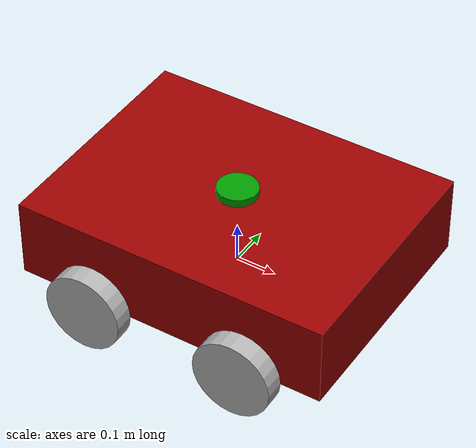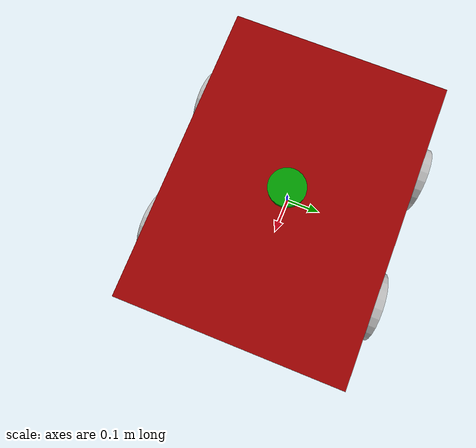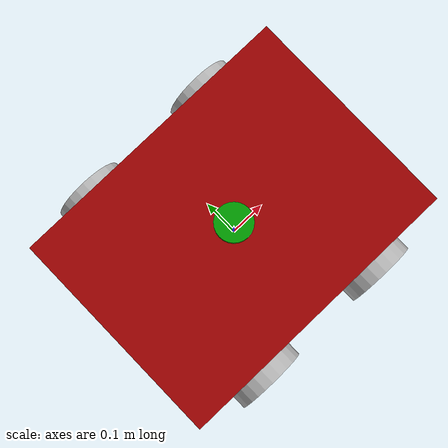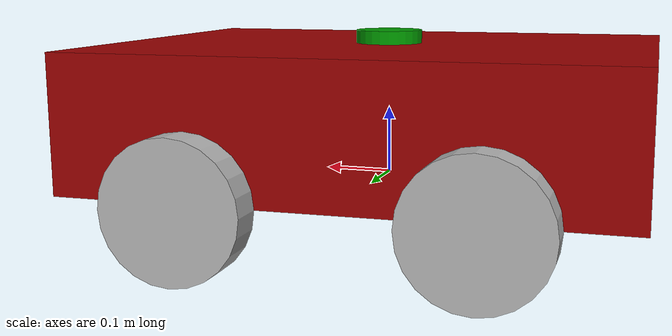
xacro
<?xml version = "1.0" ?>
<robot name = "rover" xmlns:xacro = "http://www.ros.org/wiki/xacro">
    <!-- Colours -->
    <material name = "green">
        <color rgba = "0 0.6 0 1" />
    </material>
    <material name = "red">
        <color rgba = "0.6 0 0 1" />
    </material>
    <material name = "gray">
        <color rgba = "0.7 0.7 0.7 1" />
    </material>

    <!-- XACROS !!! -->
    <!-- Inertia Xacros -->
    <xacro:macro name = "box_inertia" params = "m x y z o_xyz o_rpy">
        <inertial>
            <mass value = "${m}"/>
            <origin xyz = "${o_xyz}" rpy = "${o_rpy}" />
            <inertia
                ixx = "${(m / 12) * (z * z + y * y)}"
                iyy = "${(m / 12) * (x * x + z * z)}"
                izz = "${(m / 12) * (x * x + y * y)}"
                ixy = "0" iyz = "0" ixz = "0">
            </inertia>
        </inertial>
    </xacro:macro>
    <xacro:macro name = "cylinder_inertia" params = "m r l o_xyz o_rpy">
        <inertial>
            <mass value = "${m}"/>
            <origin xyz = "${o_xyz}" rpy = "${o_rpy}" />
            <inertia
                ixx = "${(m / 12) * (3 * r * r + l * l)}"
                iyy = "${(m / 12) * (3 * r * r + l * l)}"
                izz = "${(m / 2) * (r * r)}"
                ixy = "0" iyz = "0" ixz = "0">
            </inertia>
        </inertial>
    </xacro:macro>
    <!-- Wheel link Xacros -->
    <xacro:macro name = "wheel_link" params = "prefix">
        <link name = "${prefix}_wheel_link">
            <visual>
                <geometry>
                    <cylinder radius = "${wheel_radius}" length = "${wheel_length}" />
                </geometry>
                <origin xyz = "0 0 0" rpy = "${pi / 2.0} 0 0" />
                <material name = "gray" />
            </visual>
            <collision>
                <geometry>
                    <sphere radius = "${wheel_radius}" />
                </geometry>
                <origin xyz = "0 0 0" rpy = "0 0 0" />
            </collision>
            <xacro:cylinder_inertia m = "${wheel_mass}" r = "${wheel_radius}" l = "${wheel_length}" o_xyz = "0 0 0" o_rpy = "${pi / 2.0} 0 0" />
        </link>
    </xacro:macro>
    <!-- Wheel joint Xacros -->
    <xacro:macro name = "wheel_joint" params = "prefix x y">
        <joint name = "base_${prefix}_wheel_joint" type = "continuous">
            <parent link = "base_link" />
            <child link = "${prefix}_wheel_link" />
            <origin xyz = "${x} ${y} 0" rpy = "0 0 0" />
            <axis xyz = "0 1 0" />
        </joint>
    </xacro:macro>

    <!-- Properties -->
    <xacro:property name = "base_length" value = "0.8" />
    <xacro:property name = "base_width" value = "0.6" />
    <xacro:property name = "base_height" value = "0.2" />
    <xacro:property name = "wheel_radius" value = "0.1" />
    <xacro:property name = "wheel_length" value = "0.05" />
    <xacro:property name = "wheel_mass" value = "1.0"/>
    <xacro:property name = "box_mass" value = "5.0"/>

    <!-- TF Tree starts here -->
    <link name = "base_link">
        <visual>
            <geometry>
                <box size = "${base_length} ${base_width} ${base_height}" />
            </geometry>
            <origin xyz = "0 0 ${base_height / 2.0}" rpy = "0 0 0" />
            <material name = "red" />
        </visual>
        <collision>
            <geometry>
                <box size = "${base_length} ${base_width} ${base_height}" />
            </geometry>
            <origin xyz = "0 0 ${base_height / 2.0}" rpy = "0 0 0" />
        </collision>
        <xacro:box_inertia m = "${box_mass}" x = "${base_length}" y = "${base_width}" z = "${base_height}" o_xyz = "0 0 ${base_height / 2.0}" o_rpy = "0 0 0" />
    </link>
    <xacro:wheel_link prefix = "front_right" />
    <xacro:wheel_link prefix = "front_left" />
    <xacro:wheel_link prefix = "back_right" />
    <xacro:wheel_link prefix = "back_left" />
    <xacro:wheel_joint prefix = "front_right" x = "${base_length / 4.0}" y = "${-(base_width + wheel_length) / 2.0}" />
    <xacro:wheel_joint prefix = "front_left" x = "${base_length / 4.0}" y = "${(base_width + wheel_length) / 2.0}" />
    <xacro:wheel_joint prefix = "back_right" x = "${-base_length / 4.0}" y = "${-(base_width + wheel_length) / 2.0}" />
    <xacro:wheel_joint prefix = "back_left" x = "${-base_length / 4.0}" y = "${(base_width + wheel_length) / 2.0}" />
    <link name = "lidar_link">
        <visual>
            <geometry>
                <cylinder radius = "0.05" length = "0.02" />
            </geometry>
            <origin xyz = "0 0 0" rpy = "0 0 0" />
            <material name = "green" />
        </visual>
        <collision>
            <geometry>
                <box size = "0.1 0.1 0.02" />
            </geometry>
            <origin xyz = "0 0 0" rpy = "0 0 0" />
        </collision>
        <xacro:box_inertia m = "0.2" x = "0.1" y = "0.1" z = "0.02" o_xyz = "0 0 0" o_rpy = "0 0 0" />
    </link>
    <joint name = "lidar_joint" type = "fixed">
        <parent link = "base_link" />
        <child link = "lidar_link" />
        <origin xyz = "0 0 ${base_height + 0.01}" />
    </joint>

    <gazebo>
        <plugin filename = "gz-sim-diff-drive-system" name = "gz::sim::systems::DiffDrive">
            <left_joint>base_front_left_wheel_joint</left_joint>
            <left_joint>base_back_left_wheel_joint</left_joint>
            <right_joint>base_front_right_wheel_joint</right_joint>
            <right_joint>base_back_right_wheel_joint</right_joint>
            <wheel_seperation>${base_width}</wheel_seperation>
            <wheel_radius>${wheel_radius}</wheel_radius>
            <topic>cmd_vel</topic>
            <odom_publish_frequency>50</odom_publish_frequency>
            <odom_topic>odom</odom_topic>
            <frame_id>odom</frame_id>
            <child_frame_id>base_link</child_frame_id>
        </plugin>
    </gazebo>

    <gazebo reference = "lidar_link">
        <sensor name = "lidar" type = "gpu_lidar">
            <pose>0 0 0 0 0 0</pose>
            <topic>scan</topic>
            <update_rate>5</update_rate>
            <ray>
                <scan>
                    <horizontal>
                        <samples>360</samples>
                        <min_angle>-1.5708</min_angle>
                        <max_angle>1.5708</max_angle>
                    </horizontal>
                </scan>
                <range>
                    <min>0.12</min>
                    <max>10.0</max>
                </range>
            </ray>
            <always_on>1</always_on>
            <visualize>true</visualize>
        </sensor>
    </gazebo>

    <!-- Plugins -->
    <gazebo>
        <plugin filename = "gz-sim-joint-state-publisher-system" name = "gz::sim::systems::JointStatePublisher" />
    </gazebo>
    <gazebo>
        <plugin filename = "gz-sim-pose-publisher-system" name = "gz::sim::systems::PosePublisher">
            <publish_tf>true</publish_tf>
            <use_pose_vector_msg>true</use_pose_vector_msg>
            <odom_frame>odom</odom_frame>
            <base_frame>base_link</base_frame>
            <update_frequency>50</update_frequency>
        </plugin>
    </gazebo>
</robot>
